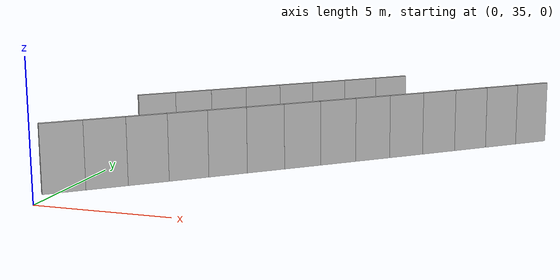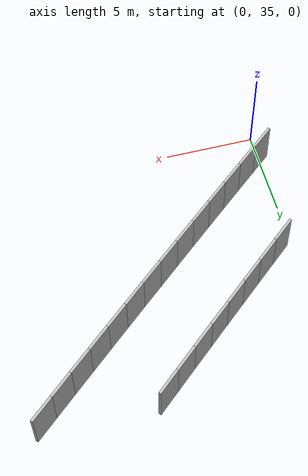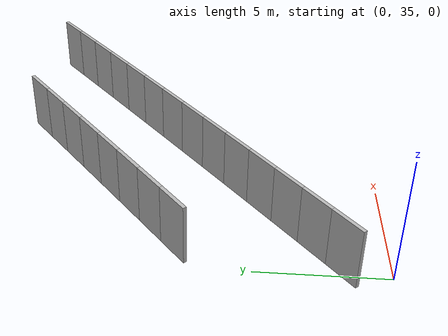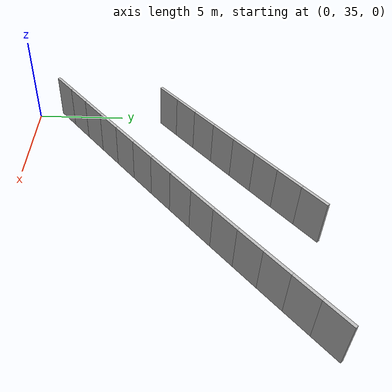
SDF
<?xml version="1.0" ?>
<sdf version="1.6">
  <model name="sps_3807">
    <pose frame="">0 0 0 0 -0 0</pose>
    <static>1</static>
    <self_collide>0</self_collide>
    <allow_auto_disable>0</allow_auto_disable>
    <link name="Wall4108">
      <kinematic>0</kinematic>
      <gravity>1</gravity>
      <self_collide>0</self_collide>
      <collision name="collision">
        <geometry>
          <box>
            <size>1.4967 0.15 2.5</size>
          </box>
        </geometry>
        <pose frame="">0 0 0 0 -0 0</pose>
      </collision>
      <visual name="visual">
        <geometry>
          <box>
            <size>1.4967 0.15 2.5</size>
          </box>
        </geometry>
        <pose frame="">0 0 0 0 -0 0</pose>
        <cast_shadows>1</cast_shadows>
        <transparency>0.0</transparency>
      </visual>
      <pose frame="">0.858451 42.8754 1.25 0 -0 0.702805</pose>
    </link>
    <link name="Wall4109">
      <kinematic>0</kinematic>
      <gravity>1</gravity>
      <self_collide>0</self_collide>
      <collision name="collision">
        <geometry>
          <box>
            <size>1.49647 0.15 2.5</size>
          </box>
        </geometry>
        <pose frame="">0 0 0 0 -0 0</pose>
      </collision>
      <visual name="visual">
        <geometry>
          <box>
            <size>1.49647 0.15 2.5</size>
          </box>
        </geometry>
        <pose frame="">0 0 0 0 -0 0</pose>
        <cast_shadows>1</cast_shadows>
        <transparency>0.0</transparency>
      </visual>
      <pose frame="">1.99966 43.8436 1.25 0 -0 0.704326</pose>
    </link>
    <link name="Wall4110">
      <kinematic>0</kinematic>
      <gravity>1</gravity>
      <self_collide>0</self_collide>
      <collision name="collision">
        <geometry>
          <box>
            <size>1.49657 0.15 2.5</size>
          </box>
        </geometry>
        <pose frame="">0 0 0 0 -0 0</pose>
      </collision>
      <visual name="visual">
        <geometry>
          <box>
            <size>1.49657 0.15 2.5</size>
          </box>
        </geometry>
        <pose frame="">0 0 0 0 -0 0</pose>
        <cast_shadows>1</cast_shadows>
        <transparency>0.0</transparency>
      </visual>
      <pose frame="">3.13924 44.8136 1.25 0 -0 0.706038</pose>
    </link>
    <link name="Wall4111">
      <kinematic>0</kinematic>
      <gravity>1</gravity>
      <self_collide>0</self_collide>
      <collision name="collision">
        <geometry>
          <box>
            <size>1.49653 0.15 2.5</size>
          </box>
        </geometry>
        <pose frame="">0 0 0 0 -0 0</pose>
      </collision>
      <visual name="visual">
        <geometry>
          <box>
            <size>1.49653 0.15 2.5</size>
          </box>
        </geometry>
        <pose frame="">0 0 0 0 -0 0</pose>
        <cast_shadows>1</cast_shadows>
        <transparency>0.0</transparency>
      </visual>
      <pose frame="">4.27734 45.7854 1.25 0 -0 0.707454</pose>
    </link>
    <link name="Wall4112">
      <kinematic>0</kinematic>
      <gravity>1</gravity>
      <self_collide>0</self_collide>
      <collision name="collision">
        <geometry>
          <box>
            <size>1.49649 0.15 2.5</size>
          </box>
        </geometry>
        <pose frame="">0 0 0 0 -0 0</pose>
      </collision>
      <visual name="visual">
        <geometry>
          <box>
            <size>1.49649 0.15 2.5</size>
          </box>
        </geometry>
        <pose frame="">0 0 0 0 -0 0</pose>
        <cast_shadows>1</cast_shadows>
        <transparency>0.0</transparency>
      </visual>
      <pose frame="">5.41384 46.759 1.25 0 -0 0.709246</pose>
    </link>
    <link name="Wall4113">
      <kinematic>0</kinematic>
      <gravity>1</gravity>
      <self_collide>0</self_collide>
      <collision name="collision">
        <geometry>
          <box>
            <size>1.49646 0.15 2.5</size>
          </box>
        </geometry>
        <pose frame="">0 0 0 0 -0 0</pose>
      </collision>
      <visual name="visual">
        <geometry>
          <box>
            <size>1.49646 0.15 2.5</size>
          </box>
        </geometry>
        <pose frame="">0 0 0 0 -0 0</pose>
        <cast_shadows>1</cast_shadows>
        <transparency>0.0</transparency>
      </visual>
      <pose frame="">6.54876 47.7344 1.25 0 -0 0.710661</pose>
    </link>
    <link name="Wall4114">
      <kinematic>0</kinematic>
      <gravity>1</gravity>
      <self_collide>0</self_collide>
      <collision name="collision">
        <geometry>
          <box>
            <size>1.49641 0.15 2.5</size>
          </box>
        </geometry>
        <pose frame="">0 0 0 0 -0 0</pose>
      </collision>
      <visual name="visual">
        <geometry>
          <box>
            <size>1.49641 0.15 2.5</size>
          </box>
        </geometry>
        <pose frame="">0 0 0 0 -0 0</pose>
        <cast_shadows>1</cast_shadows>
        <transparency>0.0</transparency>
      </visual>
      <pose frame="">7.68215 48.7115 1.25 0 -0 0.712307</pose>
    </link>
    <link name="Wall4115">
      <kinematic>0</kinematic>
      <gravity>1</gravity>
      <self_collide>0</self_collide>
      <collision name="collision">
        <geometry>
          <box>
            <size>1.49667 0.15 2.5</size>
          </box>
        </geometry>
        <pose frame="">0 0 0 0 -0 0</pose>
      </collision>
      <visual name="visual">
        <geometry>
          <box>
            <size>1.49667 0.15 2.5</size>
          </box>
        </geometry>
        <pose frame="">0 0 0 0 -0 0</pose>
        <cast_shadows>1</cast_shadows>
        <transparency>0.0</transparency>
      </visual>
      <pose frame="">8.81405 49.6905 1.25 0 -0 0.713881</pose>
    </link>
    <link name="Wall7880">
      <kinematic>0</kinematic>
      <gravity>1</gravity>
      <self_collide>0</self_collide>
      <collision name="collision">
        <geometry>
          <box>
            <size>1.50312 0.15 2.5</size>
          </box>
        </geometry>
        <pose frame="">0 0 0 0 -0 0</pose>
      </collision>
      <visual name="visual">
        <geometry>
          <box>
            <size>1.50312 0.15 2.5</size>
          </box>
        </geometry>
        <pose frame="">0 0 0 0 -0 0</pose>
        <cast_shadows>1</cast_shadows>
        <transparency>0.0</transparency>
      </visual>
      <pose frame="">0.0878518 36.8105 1.25 0 -0 0.697972</pose>
    </link>
    <link name="Wall7881">
      <kinematic>0</kinematic>
      <gravity>1</gravity>
      <self_collide>0</self_collide>
      <collision name="collision">
        <geometry>
          <box>
            <size>1.5032 0.15 2.5</size>
          </box>
        </geometry>
        <pose frame="">0 0 0 0 -0 0</pose>
      </collision>
      <visual name="visual">
        <geometry>
          <box>
            <size>1.5032 0.15 2.5</size>
          </box>
        </geometry>
        <pose frame="">0 0 0 0 -0 0</pose>
        <cast_shadows>1</cast_shadows>
        <transparency>0.0</transparency>
      </visual>
      <pose frame="">1.23867 37.7775 1.25 0 -0 0.699677</pose>
    </link>
    <link name="Wall7882">
      <kinematic>0</kinematic>
      <gravity>1</gravity>
      <self_collide>0</self_collide>
      <collision name="collision">
        <geometry>
          <box>
            <size>1.5031 0.15 2.5</size>
          </box>
        </geometry>
        <pose frame="">0 0 0 0 -0 0</pose>
      </collision>
      <visual name="visual">
        <geometry>
          <box>
            <size>1.5031 0.15 2.5</size>
          </box>
        </geometry>
        <pose frame="">0 0 0 0 -0 0</pose>
        <cast_shadows>1</cast_shadows>
        <transparency>0.0</transparency>
      </visual>
      <pose frame="">2.38796 38.7463 1.25 0 -0 0.701112</pose>
    </link>
    <link name="Wall7883">
      <kinematic>0</kinematic>
      <gravity>1</gravity>
      <self_collide>0</self_collide>
      <collision name="collision">
        <geometry>
          <box>
            <size>1.50305 0.15 2.5</size>
          </box>
        </geometry>
        <pose frame="">0 0 0 0 -0 0</pose>
      </collision>
      <visual name="visual">
        <geometry>
          <box>
            <size>1.50305 0.15 2.5</size>
          </box>
        </geometry>
        <pose frame="">0 0 0 0 -0 0</pose>
        <cast_shadows>1</cast_shadows>
        <transparency>0.0</transparency>
      </visual>
      <pose frame="">3.53564 39.7169 1.25 0 -0 0.702896</pose>
    </link>
    <link name="Wall7884">
      <kinematic>0</kinematic>
      <gravity>1</gravity>
      <self_collide>0</self_collide>
      <collision name="collision">
        <geometry>
          <box>
            <size>1.50306 0.15 2.5</size>
          </box>
        </geometry>
        <pose frame="">0 0 0 0 -0 0</pose>
      </collision>
      <visual name="visual">
        <geometry>
          <box>
            <size>1.50306 0.15 2.5</size>
          </box>
        </geometry>
        <pose frame="">0 0 0 0 -0 0</pose>
        <cast_shadows>1</cast_shadows>
        <transparency>0.0</transparency>
      </visual>
      <pose frame="">4.68175 40.6893 1.25 0 -0 0.704279</pose>
    </link>
    <link name="Wall7885">
      <kinematic>0</kinematic>
      <gravity>1</gravity>
      <self_collide>0</self_collide>
      <collision name="collision">
        <geometry>
          <box>
            <size>1.50307 0.15 2.5</size>
          </box>
        </geometry>
        <pose frame="">0 0 0 0 -0 0</pose>
      </collision>
      <visual name="visual">
        <geometry>
          <box>
            <size>1.50307 0.15 2.5</size>
          </box>
        </geometry>
        <pose frame="">0 0 0 0 -0 0</pose>
        <cast_shadows>1</cast_shadows>
        <transparency>0.0</transparency>
      </visual>
      <pose frame="">5.82638 41.6635 1.25 0 -0 0.705979</pose>
    </link>
    <link name="Wall7886">
      <kinematic>0</kinematic>
      <gravity>1</gravity>
      <self_collide>0</self_collide>
      <collision name="collision">
        <geometry>
          <box>
            <size>1.503 0.15 2.5</size>
          </box>
        </geometry>
        <pose frame="">0 0 0 0 -0 0</pose>
      </collision>
      <visual name="visual">
        <geometry>
          <box>
            <size>1.503 0.15 2.5</size>
          </box>
        </geometry>
        <pose frame="">0 0 0 0 -0 0</pose>
        <cast_shadows>1</cast_shadows>
        <transparency>0.0</transparency>
      </visual>
      <pose frame="">6.96935 42.6396 1.25 0 -0 0.707618</pose>
    </link>
    <link name="Wall7887">
      <kinematic>0</kinematic>
      <gravity>1</gravity>
      <self_collide>0</self_collide>
      <collision name="collision">
        <geometry>
          <box>
            <size>1.50329 0.15 2.5</size>
          </box>
        </geometry>
        <pose frame="">0 0 0 0 -0 0</pose>
      </collision>
      <visual name="visual">
        <geometry>
          <box>
            <size>1.50329 0.15 2.5</size>
          </box>
        </geometry>
        <pose frame="">0 0 0 0 -0 0</pose>
        <cast_shadows>1</cast_shadows>
        <transparency>0.0</transparency>
      </visual>
      <pose frame="">8.11083 43.6176 1.25 0 -0 0.709216</pose>
    </link>
    <link name="Wall7888">
      <kinematic>0</kinematic>
      <gravity>1</gravity>
      <self_collide>0</self_collide>
      <collision name="collision">
        <geometry>
          <box>
            <size>1.50301 0.15 2.5</size>
          </box>
        </geometry>
        <pose frame="">0 0 0 0 -0 0</pose>
      </collision>
      <visual name="visual">
        <geometry>
          <box>
            <size>1.50301 0.15 2.5</size>
          </box>
        </geometry>
        <pose frame="">0 0 0 0 -0 0</pose>
        <cast_shadows>1</cast_shadows>
        <transparency>0.0</transparency>
      </visual>
      <pose frame="">9.25085 44.5973 1.25 0 -0 0.710613</pose>
    </link>
    <link name="Wall7889">
      <kinematic>0</kinematic>
      <gravity>1</gravity>
      <self_collide>0</self_collide>
      <collision name="collision">
        <geometry>
          <box>
            <size>1.50307 0.15 2.5</size>
          </box>
        </geometry>
        <pose frame="">0 0 0 0 -0 0</pose>
      </collision>
      <visual name="visual">
        <geometry>
          <box>
            <size>1.50307 0.15 2.5</size>
          </box>
        </geometry>
        <pose frame="">0 0 0 0 -0 0</pose>
        <cast_shadows>1</cast_shadows>
        <transparency>0.0</transparency>
      </visual>
      <pose frame="">10.3892 45.5787 1.25 0 -0 0.712344</pose>
    </link>
    <link name="Wall7890">
      <kinematic>0</kinematic>
      <gravity>1</gravity>
      <self_collide>0</self_collide>
      <collision name="collision">
        <geometry>
          <box>
            <size>1.50296 0.15 2.5</size>
          </box>
        </geometry>
        <pose frame="">0 0 0 0 -0 0</pose>
      </collision>
      <visual name="visual">
        <geometry>
          <box>
            <size>1.50296 0.15 2.5</size>
          </box>
        </geometry>
        <pose frame="">0 0 0 0 -0 0</pose>
        <cast_shadows>1</cast_shadows>
        <transparency>0.0</transparency>
      </visual>
      <pose frame="">11.5261 46.5619 1.25 0 -0 0.713806</pose>
    </link>
    <link name="Wall7891">
      <kinematic>0</kinematic>
      <gravity>1</gravity>
      <self_collide>0</self_collide>
      <collision name="collision">
        <geometry>
          <box>
            <size>1.50299 0.15 2.5</size>
          </box>
        </geometry>
        <pose frame="">0 0 0 0 -0 0</pose>
      </collision>
      <visual name="visual">
        <geometry>
          <box>
            <size>1.50299 0.15 2.5</size>
          </box>
        </geometry>
        <pose frame="">0 0 0 0 -0 0</pose>
        <cast_shadows>1</cast_shadows>
        <transparency>0.0</transparency>
      </visual>
      <pose frame="">12.6613 47.5469 1.25 0 -0 0.715506</pose>
    </link>
    <link name="Wall7892">
      <kinematic>0</kinematic>
      <gravity>1</gravity>
      <self_collide>0</self_collide>
      <collision name="collision">
        <geometry>
          <box>
            <size>1.50313 0.15 2.5</size>
          </box>
        </geometry>
        <pose frame="">0 0 0 0 -0 0</pose>
      </collision>
      <visual name="visual">
        <geometry>
          <box>
            <size>1.50313 0.15 2.5</size>
          </box>
        </geometry>
        <pose frame="">0 0 0 0 -0 0</pose>
        <cast_shadows>1</cast_shadows>
        <transparency>0.0</transparency>
      </visual>
      <pose frame="">13.795 48.5338 1.25 0 -0 0.717039</pose>
    </link>
    <link name="Wall7893">
      <kinematic>0</kinematic>
      <gravity>1</gravity>
      <self_collide>0</self_collide>
      <collision name="collision">
        <geometry>
          <box>
            <size>1.50314 0.15 2.5</size>
          </box>
        </geometry>
        <pose frame="">0 0 0 0 -0 0</pose>
      </collision>
      <visual name="visual">
        <geometry>
          <box>
            <size>1.50314 0.15 2.5</size>
          </box>
        </geometry>
        <pose frame="">0 0 0 0 -0 0</pose>
        <cast_shadows>1</cast_shadows>
        <transparency>0.0</transparency>
      </visual>
      <pose frame="">14.9272 49.5225 1.25 0 -0 0.71865</pose>
    </link>
  </model>
</sdf>
